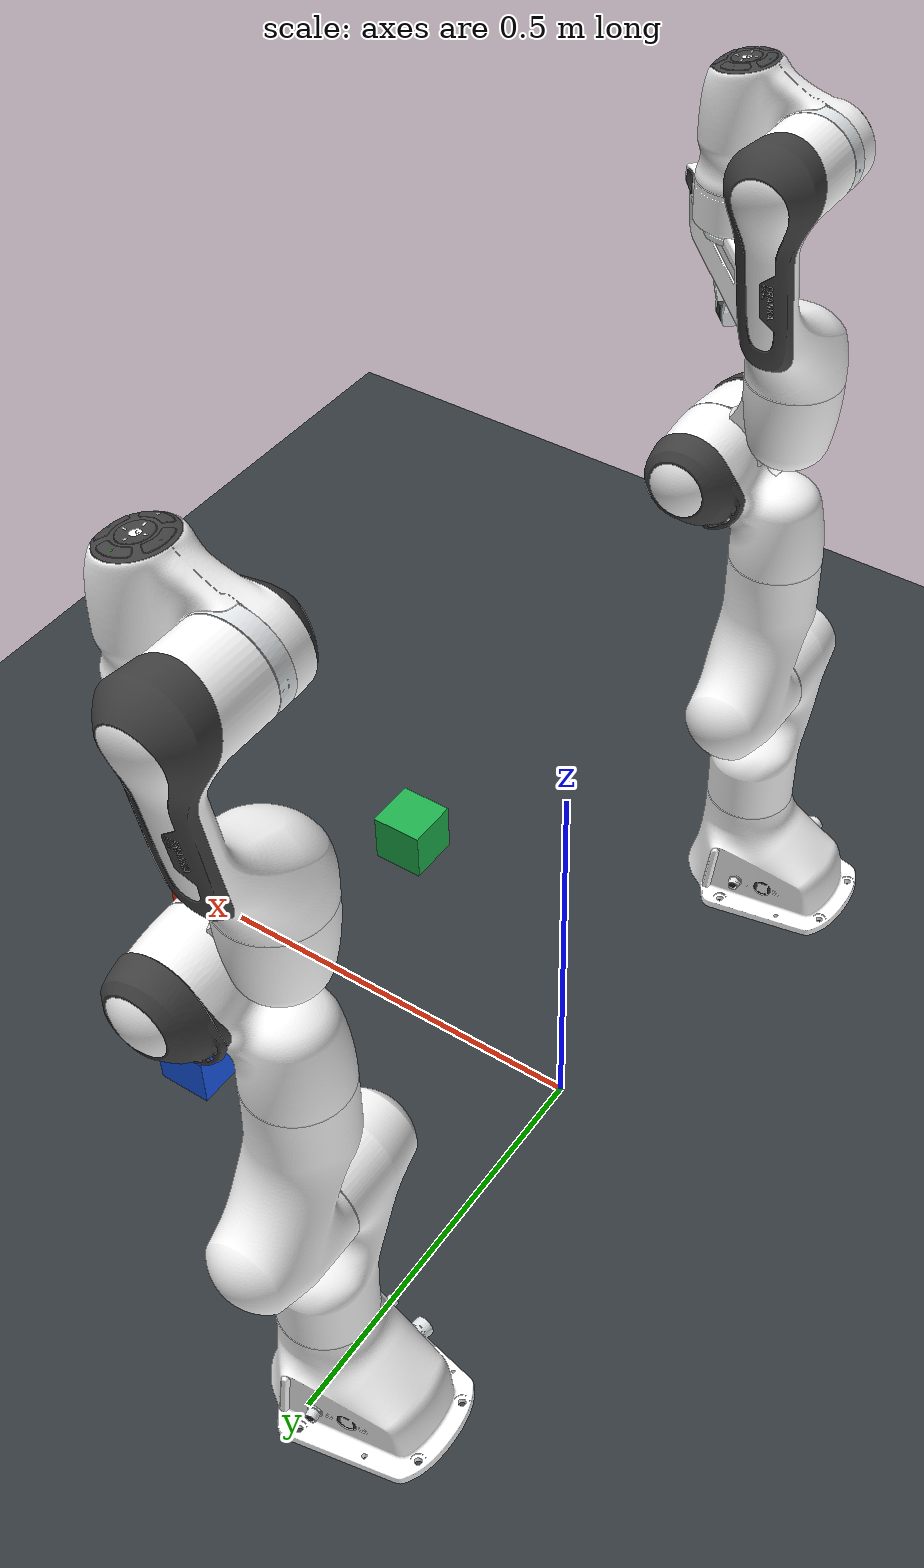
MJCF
<mujoco model="dual panda cube scene">
  <compiler angle="radian" meshdir="../franka_emika_panda" autolimits="true" />
  <option cone="elliptic" impratio="20" iterations="100" tolerance="1e-10" />
  <default>
    <default class="panda">
      <material specular="0.5" shininess="0.25" />
      <joint armature="0.1" damping="1" axis="0 0 1" range="-2.8973 2.8973" />
      <general dyntype="none" biastype="affine" ctrlrange="-2.8973 2.8973" forcerange="-87 87" />
      <default class="finger">
        <joint axis="0 1 0" type="slide" range="0 0.04" />
      </default>
      <default class="visual">
        <geom type="mesh" contype="0" conaffinity="0" group="2" />
      </default>
      <default class="collision">
        <geom type="mesh" group="3" />
        <default class="fingertip_pad_collision_1">
          <geom type="box" size="0.0085 0.004 0.0085" pos="0 0.0055 0.0445" />
        </default>
        <default class="fingertip_pad_collision_2">
          <geom type="box" size="0.003 0.002 0.003" pos="0.0055 0.002 0.05" />
        </default>
        <default class="fingertip_pad_collision_3">
          <geom type="box" size="0.003 0.002 0.003" pos="-0.0055 0.002 0.05" />
        </default>
        <default class="fingertip_pad_collision_4">
          <geom type="box" size="0.003 0.002 0.0035" pos="0.0055 0.002 0.0395" />
        </default>
        <default class="fingertip_pad_collision_5">
          <geom type="box" size="0.003 0.002 0.0035" pos="-0.0055 0.002 0.0395" />
        </default>
      </default>
    </default>
  </default>
  <asset>
    <material class="panda" name="white" rgba="1 1 1 1" />
    <material class="panda" name="off_white" rgba="0.901961 0.921569 0.929412 1" />
    <material class="panda" name="black" rgba="0.25 0.25 0.25 1" />
    <material class="panda" name="green" rgba="0 1 0 1" />
    <material class="panda" name="light_blue" rgba="0.039216 0.541176 0.780392 1" />
    <mesh name="link0_c" file="assets/link0.stl" />
    <mesh name="link1_c" file="assets/link1.stl" />
    <mesh name="link2_c" file="assets/link2.stl" />
    <mesh name="link3_c" file="assets/link3.stl" />
    <mesh name="link4_c" file="assets/link4.stl" />
    <mesh name="link5_c0" file="assets/link5_collision_0.obj" />
    <mesh name="link5_c1" file="assets/link5_collision_1.obj" />
    <mesh name="link5_c2" file="assets/link5_collision_2.obj" />
    <mesh name="link6_c" file="assets/link6.stl" />
    <mesh name="link7_c" file="assets/link7.stl" />
    <mesh name="hand_c" file="assets/hand.stl" />
    <mesh file="assets/link0_0.obj" />
    <mesh file="assets/link0_1.obj" />
    <mesh file="assets/link0_2.obj" />
    <mesh file="assets/link0_3.obj" />
    <mesh file="assets/link0_4.obj" />
    <mesh file="assets/link0_5.obj" />
    <mesh file="assets/link0_7.obj" />
    <mesh file="assets/link0_8.obj" />
    <mesh file="assets/link0_9.obj" />
    <mesh file="assets/link0_10.obj" />
    <mesh file="assets/link0_11.obj" />
    <mesh file="assets/link1.obj" />
    <mesh file="assets/link2.obj" />
    <mesh file="assets/link3_0.obj" />
    <mesh file="assets/link3_1.obj" />
    <mesh file="assets/link3_2.obj" />
    <mesh file="assets/link3_3.obj" />
    <mesh file="assets/link4_0.obj" />
    <mesh file="assets/link4_1.obj" />
    <mesh file="assets/link4_2.obj" />
    <mesh file="assets/link4_3.obj" />
    <mesh file="assets/link5_0.obj" />
    <mesh file="assets/link5_1.obj" />
    <mesh file="assets/link5_2.obj" />
    <mesh file="assets/link6_0.obj" />
    <mesh file="assets/link6_1.obj" />
    <mesh file="assets/link6_2.obj" />
    <mesh file="assets/link6_3.obj" />
    <mesh file="assets/link6_4.obj" />
    <mesh file="assets/link6_5.obj" />
    <mesh file="assets/link6_6.obj" />
    <mesh file="assets/link6_7.obj" />
    <mesh file="assets/link6_8.obj" />
    <mesh file="assets/link6_9.obj" />
    <mesh file="assets/link6_10.obj" />
    <mesh file="assets/link6_11.obj" />
    <mesh file="assets/link6_12.obj" />
    <mesh file="assets/link6_13.obj" />
    <mesh file="assets/link6_14.obj" />
    <mesh file="assets/link6_15.obj" />
    <mesh file="assets/link6_16.obj" />
    <mesh file="assets/link7_0.obj" />
    <mesh file="assets/link7_1.obj" />
    <mesh file="assets/link7_2.obj" />
    <mesh file="assets/link7_3.obj" />
    <mesh file="assets/link7_4.obj" />
    <mesh file="assets/link7_5.obj" />
    <mesh file="assets/link7_6.obj" />
    <mesh file="assets/link7_7.obj" />
    <mesh file="assets/hand_0.obj" />
    <mesh file="assets/hand_1.obj" />
    <mesh file="assets/hand_2.obj" />
    <mesh file="assets/hand_3.obj" />
    <mesh file="assets/hand_4.obj" />
    <mesh file="assets/finger_0.obj" />
    <mesh file="assets/finger_1.obj" />
    <texture type="skybox" builtin="gradient" rgb1="0.35 0.45 0.55" rgb2="0.02 0.03 0.04" width="512" height="3072" />
    <texture type="2d" name="ground_grid" builtin="checker" mark="edge" rgb1="0.25 0.28 0.30" rgb2="0.16 0.18 0.20" markrgb="0.8 0.8 0.8" width="300" height="300" />
    <material name="ground_grid" texture="ground_grid" texuniform="true" texrepeat="5 5" reflectance="0.02" specular="0" shininess="0" />
    <material name="block_red" rgba="0.95 0.18 0.08 1" />
    <material name="block_blue" rgba="0.10 0.36 0.95 1" />
    <material name="block_green" rgba="0.12 0.70 0.30 1" />
    <material name="wood" rgba="0.58 0.36 0.18 1" />
    <material name="pillar_mat" rgba="0.70 0.72 0.70 1" />
  </asset>
  <statistic center="0.45 0 0.25" extent="1.6" />
  <visual>
    <headlight diffuse="0.6 0.6 0.6" ambient="0.3 0.3 0.3" specular="0 0 0" />
    <rgba haze="0.12 0.16 0.20 1" />
    <global azimuth="135" elevation="-25" />
  </visual>
  <worldbody>
    <light name="key" pos="0.2 -0.8 1.6" dir="-0.2 0.7 -1" directional="true" />
    <light name="fill" pos="-0.6 0.4 1.2" dir="0.5 -0.2 -1" directional="true" diffuse="0.25 0.25 0.25" />
    <geom name="floor" type="plane" size="2 2 0.05" material="ground_grid" friction="2.0 0.5 0.02" />
    <body name="block_red" pos="0.55 0 0.04">
      <freejoint name="block_red_freejoint" />
      <geom name="block_red_geom" type="box" size="0.035 0.035 0.035" mass="0.08" material="block_red" friction="5.0 2.0 0.1" condim="6" solref="0.002 1" solimp="0.95 0.99 0.001" />
    </body>
    <body name="block_blue" pos="0.38 0.22 0.04">
      <freejoint name="block_blue_freejoint" />
      <geom name="block_blue_geom" type="box" size="0.035 0.035 0.035" mass="0.08" material="block_blue" friction="5.0 2.0 0.1" condim="6" solref="0.002 1" solimp="0.95 0.99 0.001" />
    </body>
    <body name="block_green" pos="0.38 -0.22 0.04">
      <freejoint name="block_green_freejoint" />
      <geom name="block_green_geom" type="box" size="0.035 0.035 0.035" mass="0.08" material="block_green" friction="5.0 2.0 0.1" condim="6" solref="0.002 1" solimp="0.95 0.99 0.001" />
    </body>
    <camera name="overview" pos="1.25 -1.20 0.85" xyaxes="0.674 0.739 0 -0.36 0.33 0.87" />
    <body name="left_link0" childclass="panda" pos="0 0.45 0">
      <inertial mass="0.629769" pos="-0.041018 -0.00014 0.049974" fullinertia="0.00315 0.00388 0.004285 8.2904e-7 0.00015 8.2299e-6" />
      <geom mesh="link0_0" material="off_white" class="visual" />
      <geom mesh="link0_1" material="black" class="visual" />
      <geom mesh="link0_2" material="off_white" class="visual" />
      <geom mesh="link0_3" material="black" class="visual" />
      <geom mesh="link0_4" material="off_white" class="visual" />
      <geom mesh="link0_5" material="black" class="visual" />
      <geom mesh="link0_7" material="white" class="visual" />
      <geom mesh="link0_8" material="white" class="visual" />
      <geom mesh="link0_9" material="black" class="visual" />
      <geom mesh="link0_10" material="off_white" class="visual" />
      <geom mesh="link0_11" material="white" class="visual" />
      <geom mesh="link0_c" class="collision" />
      <body name="left_link1" pos="0 0 0.333">
        <inertial mass="4.970684" pos="0.003875 0.002081 -0.04762" fullinertia="0.70337 0.70661 0.0091170 -0.00013900 0.0067720 0.019169" />
        <joint name="left_joint1" />
        <geom material="white" mesh="link1" class="visual" />
        <geom mesh="link1_c" class="collision" />
        <body name="left_link2" quat="1 -1 0 0">
          <inertial mass="0.646926" pos="-0.003141 -0.02872 0.003495" fullinertia="0.0079620 2.8110e-2 2.5995e-2 -3.925e-3 1.0254e-2 7.04e-4" />
          <joint name="left_joint2" range="-1.7628 1.7628" />
          <geom material="white" mesh="link2" class="visual" />
          <geom mesh="link2_c" class="collision" />
          <body name="left_link3" pos="0 -0.316 0" quat="1 1 0 0">
            <joint name="left_joint3" />
            <inertial mass="3.228604" pos="2.7518e-2 3.9252e-2 -6.6502e-2" fullinertia="3.7242e-2 3.6155e-2 1.083e-2 -4.761e-3 -1.1396e-2 -1.2805e-2" />
            <geom mesh="link3_0" material="white" class="visual" />
            <geom mesh="link3_1" material="white" class="visual" />
            <geom mesh="link3_2" material="white" class="visual" />
            <geom mesh="link3_3" material="black" class="visual" />
            <geom mesh="link3_c" class="collision" />
            <body name="left_link4" pos="0.0825 0 0" quat="1 1 0 0">
              <inertial mass="3.587895" pos="-5.317e-2 1.04419e-1 2.7454e-2" fullinertia="2.5853e-2 1.9552e-2 2.8323e-2 7.796e-3 -1.332e-3 8.641e-3" />
              <joint name="left_joint4" range="-3.0718 -0.0698" />
              <geom mesh="link4_0" material="white" class="visual" />
              <geom mesh="link4_1" material="white" class="visual" />
              <geom mesh="link4_2" material="black" class="visual" />
              <geom mesh="link4_3" material="white" class="visual" />
              <geom mesh="link4_c" class="collision" />
              <body name="left_link5" pos="-0.0825 0.384 0" quat="1 -1 0 0">
                <inertial mass="1.225946" pos="-1.1953e-2 4.1065e-2 -3.8437e-2" fullinertia="3.5549e-2 2.9474e-2 8.627e-3 -2.117e-3 -4.037e-3 2.29e-4" />
                <joint name="left_joint5" />
                <geom mesh="link5_0" material="black" class="visual" />
                <geom mesh="link5_1" material="white" class="visual" />
                <geom mesh="link5_2" material="white" class="visual" />
                <geom mesh="link5_c0" class="collision" />
                <geom mesh="link5_c1" class="collision" />
                <geom mesh="link5_c2" class="collision" />
                <body name="left_link6" quat="1 1 0 0">
                  <inertial mass="1.666555" pos="6.0149e-2 -1.4117e-2 -1.0517e-2" fullinertia="1.964e-3 4.354e-3 5.433e-3 1.09e-4 -1.158e-3 3.41e-4" />
                  <joint name="left_joint6" range="-0.0175 3.7525" />
                  <geom mesh="link6_0" material="off_white" class="visual" />
                  <geom mesh="link6_1" material="white" class="visual" />
                  <geom mesh="link6_2" material="black" class="visual" />
                  <geom mesh="link6_3" material="white" class="visual" />
                  <geom mesh="link6_4" material="white" class="visual" />
                  <geom mesh="link6_5" material="white" class="visual" />
                  <geom mesh="link6_6" material="white" class="visual" />
                  <geom mesh="link6_7" material="light_blue" class="visual" />
                  <geom mesh="link6_8" material="light_blue" class="visual" />
                  <geom mesh="link6_9" material="black" class="visual" />
                  <geom mesh="link6_10" material="black" class="visual" />
                  <geom mesh="link6_11" material="white" class="visual" />
                  <geom mesh="link6_12" material="green" class="visual" />
                  <geom mesh="link6_13" material="white" class="visual" />
                  <geom mesh="link6_14" material="black" class="visual" />
                  <geom mesh="link6_15" material="black" class="visual" />
                  <geom mesh="link6_16" material="white" class="visual" />
                  <geom mesh="link6_c" class="collision" />
                  <body name="left_link7" pos="0.088 0 0" quat="1 1 0 0">
                    <inertial mass="7.35522e-01" pos="1.0517e-2 -4.252e-3 6.1597e-2" fullinertia="1.2516e-2 1.0027e-2 4.815e-3 -4.28e-4 -1.196e-3 -7.41e-4" />
                    <joint name="left_joint7" />
                    <geom mesh="link7_0" material="white" class="visual" />
                    <geom mesh="link7_1" material="black" class="visual" />
                    <geom mesh="link7_2" material="black" class="visual" />
                    <geom mesh="link7_3" material="black" class="visual" />
                    <geom mesh="link7_4" material="black" class="visual" />
                    <geom mesh="link7_5" material="black" class="visual" />
                    <geom mesh="link7_6" material="black" class="visual" />
                    <geom mesh="link7_7" material="white" class="visual" />
                    <geom mesh="link7_c" class="collision" />
                    <body name="left_hand" pos="0 0 0.107" quat="0.9238795 0 0 -0.3826834">
                      <inertial mass="0.73" pos="-0.01 0 0.03" diaginertia="0.001 0.0025 0.0017" />
                      <geom mesh="hand_0" material="off_white" class="visual" />
                      <geom mesh="hand_1" material="black" class="visual" />
                      <geom mesh="hand_2" material="black" class="visual" />
                      <geom mesh="hand_3" material="white" class="visual" />
                      <geom mesh="hand_4" material="off_white" class="visual" />
                      <geom mesh="hand_c" class="collision" />
                      <body name="left_left_finger" pos="0 0 0.0584">
                        <inertial mass="0.015" pos="0 0 0" diaginertia="2.375e-6 2.375e-6 7.5e-7" />
                        <joint name="left_finger_joint1" class="finger" />
                        <geom mesh="finger_0" material="off_white" class="visual" />
                        <geom mesh="finger_1" material="black" class="visual" />
                        <geom mesh="finger_0" class="collision" />
                        <geom class="fingertip_pad_collision_1" />
                        <geom class="fingertip_pad_collision_2" />
                        <geom class="fingertip_pad_collision_3" />
                        <geom class="fingertip_pad_collision_4" />
                        <geom class="fingertip_pad_collision_5" />
                      </body>
                      <body name="left_right_finger" pos="0 0 0.0584" quat="0 0 0 1">
                        <inertial mass="0.015" pos="0 0 0" diaginertia="2.375e-6 2.375e-6 7.5e-7" />
                        <joint name="left_finger_joint2" class="finger" />
                        <geom mesh="finger_0" material="off_white" class="visual" />
                        <geom mesh="finger_1" material="black" class="visual" />
                        <geom mesh="finger_0" class="collision" />
                        <geom class="fingertip_pad_collision_1" />
                        <geom class="fingertip_pad_collision_2" />
                        <geom class="fingertip_pad_collision_3" />
                        <geom class="fingertip_pad_collision_4" />
                        <geom class="fingertip_pad_collision_5" />
                      </body>
                    </body>
                  </body>
                </body>
              </body>
            </body>
          </body>
        </body>
      </body>
    </body>
    <body name="right_link0" childclass="panda" pos="0 -0.45 0">
      <inertial mass="0.629769" pos="-0.041018 -0.00014 0.049974" fullinertia="0.00315 0.00388 0.004285 8.2904e-7 0.00015 8.2299e-6" />
      <geom mesh="link0_0" material="off_white" class="visual" />
      <geom mesh="link0_1" material="black" class="visual" />
      <geom mesh="link0_2" material="off_white" class="visual" />
      <geom mesh="link0_3" material="black" class="visual" />
      <geom mesh="link0_4" material="off_white" class="visual" />
      <geom mesh="link0_5" material="black" class="visual" />
      <geom mesh="link0_7" material="white" class="visual" />
      <geom mesh="link0_8" material="white" class="visual" />
      <geom mesh="link0_9" material="black" class="visual" />
      <geom mesh="link0_10" material="off_white" class="visual" />
      <geom mesh="link0_11" material="white" class="visual" />
      <geom mesh="link0_c" class="collision" />
      <body name="right_link1" pos="0 0 0.333">
        <inertial mass="4.970684" pos="0.003875 0.002081 -0.04762" fullinertia="0.70337 0.70661 0.0091170 -0.00013900 0.0067720 0.019169" />
        <joint name="right_joint1" />
        <geom material="white" mesh="link1" class="visual" />
        <geom mesh="link1_c" class="collision" />
        <body name="right_link2" quat="1 -1 0 0">
          <inertial mass="0.646926" pos="-0.003141 -0.02872 0.003495" fullinertia="0.0079620 2.8110e-2 2.5995e-2 -3.925e-3 1.0254e-2 7.04e-4" />
          <joint name="right_joint2" range="-1.7628 1.7628" />
          <geom material="white" mesh="link2" class="visual" />
          <geom mesh="link2_c" class="collision" />
          <body name="right_link3" pos="0 -0.316 0" quat="1 1 0 0">
            <joint name="right_joint3" />
            <inertial mass="3.228604" pos="2.7518e-2 3.9252e-2 -6.6502e-2" fullinertia="3.7242e-2 3.6155e-2 1.083e-2 -4.761e-3 -1.1396e-2 -1.2805e-2" />
            <geom mesh="link3_0" material="white" class="visual" />
            <geom mesh="link3_1" material="white" class="visual" />
            <geom mesh="link3_2" material="white" class="visual" />
            <geom mesh="link3_3" material="black" class="visual" />
            <geom mesh="link3_c" class="collision" />
            <body name="right_link4" pos="0.0825 0 0" quat="1 1 0 0">
              <inertial mass="3.587895" pos="-5.317e-2 1.04419e-1 2.7454e-2" fullinertia="2.5853e-2 1.9552e-2 2.8323e-2 7.796e-3 -1.332e-3 8.641e-3" />
              <joint name="right_joint4" range="-3.0718 -0.0698" />
              <geom mesh="link4_0" material="white" class="visual" />
              <geom mesh="link4_1" material="white" class="visual" />
              <geom mesh="link4_2" material="black" class="visual" />
              <geom mesh="link4_3" material="white" class="visual" />
              <geom mesh="link4_c" class="collision" />
              <body name="right_link5" pos="-0.0825 0.384 0" quat="1 -1 0 0">
                <inertial mass="1.225946" pos="-1.1953e-2 4.1065e-2 -3.8437e-2" fullinertia="3.5549e-2 2.9474e-2 8.627e-3 -2.117e-3 -4.037e-3 2.29e-4" />
                <joint name="right_joint5" />
                <geom mesh="link5_0" material="black" class="visual" />
                <geom mesh="link5_1" material="white" class="visual" />
                <geom mesh="link5_2" material="white" class="visual" />
                <geom mesh="link5_c0" class="collision" />
                <geom mesh="link5_c1" class="collision" />
                <geom mesh="link5_c2" class="collision" />
                <body name="right_link6" quat="1 1 0 0">
                  <inertial mass="1.666555" pos="6.0149e-2 -1.4117e-2 -1.0517e-2" fullinertia="1.964e-3 4.354e-3 5.433e-3 1.09e-4 -1.158e-3 3.41e-4" />
                  <joint name="right_joint6" range="-0.0175 3.7525" />
                  <geom mesh="link6_0" material="off_white" class="visual" />
                  <geom mesh="link6_1" material="white" class="visual" />
                  <geom mesh="link6_2" material="black" class="visual" />
                  <geom mesh="link6_3" material="white" class="visual" />
                  <geom mesh="link6_4" material="white" class="visual" />
                  <geom mesh="link6_5" material="white" class="visual" />
                  <geom mesh="link6_6" material="white" class="visual" />
                  <geom mesh="link6_7" material="light_blue" class="visual" />
                  <geom mesh="link6_8" material="light_blue" class="visual" />
                  <geom mesh="link6_9" material="black" class="visual" />
                  <geom mesh="link6_10" material="black" class="visual" />
                  <geom mesh="link6_11" material="white" class="visual" />
                  <geom mesh="link6_12" material="green" class="visual" />
                  <geom mesh="link6_13" material="white" class="visual" />
                  <geom mesh="link6_14" material="black" class="visual" />
                  <geom mesh="link6_15" material="black" class="visual" />
                  <geom mesh="link6_16" material="white" class="visual" />
                  <geom mesh="link6_c" class="collision" />
                  <body name="right_link7" pos="0.088 0 0" quat="1 1 0 0">
                    <inertial mass="7.35522e-01" pos="1.0517e-2 -4.252e-3 6.1597e-2" fullinertia="1.2516e-2 1.0027e-2 4.815e-3 -4.28e-4 -1.196e-3 -7.41e-4" />
                    <joint name="right_joint7" />
                    <geom mesh="link7_0" material="white" class="visual" />
                    <geom mesh="link7_1" material="black" class="visual" />
                    <geom mesh="link7_2" material="black" class="visual" />
                    <geom mesh="link7_3" material="black" class="visual" />
                    <geom mesh="link7_4" material="black" class="visual" />
                    <geom mesh="link7_5" material="black" class="visual" />
                    <geom mesh="link7_6" material="black" class="visual" />
                    <geom mesh="link7_7" material="white" class="visual" />
                    <geom mesh="link7_c" class="collision" />
                    <body name="right_hand" pos="0 0 0.107" quat="0.9238795 0 0 -0.3826834">
                      <inertial mass="0.73" pos="-0.01 0 0.03" diaginertia="0.001 0.0025 0.0017" />
                      <geom mesh="hand_0" material="off_white" class="visual" />
                      <geom mesh="hand_1" material="black" class="visual" />
                      <geom mesh="hand_2" material="black" class="visual" />
                      <geom mesh="hand_3" material="white" class="visual" />
                      <geom mesh="hand_4" material="off_white" class="visual" />
                      <geom mesh="hand_c" class="collision" />
                      <body name="right_left_finger" pos="0 0 0.0584">
                        <inertial mass="0.015" pos="0 0 0" diaginertia="2.375e-6 2.375e-6 7.5e-7" />
                        <joint name="right_finger_joint1" class="finger" />
                        <geom mesh="finger_0" material="off_white" class="visual" />
                        <geom mesh="finger_1" material="black" class="visual" />
                        <geom mesh="finger_0" class="collision" />
                        <geom class="fingertip_pad_collision_1" />
                        <geom class="fingertip_pad_collision_2" />
                        <geom class="fingertip_pad_collision_3" />
                        <geom class="fingertip_pad_collision_4" />
                        <geom class="fingertip_pad_collision_5" />
                      </body>
                      <body name="right_right_finger" pos="0 0 0.0584" quat="0 0 0 1">
                        <inertial mass="0.015" pos="0 0 0" diaginertia="2.375e-6 2.375e-6 7.5e-7" />
                        <joint name="right_finger_joint2" class="finger" />
                        <geom mesh="finger_0" material="off_white" class="visual" />
                        <geom mesh="finger_1" material="black" class="visual" />
                        <geom mesh="finger_0" class="collision" />
                        <geom class="fingertip_pad_collision_1" />
                        <geom class="fingertip_pad_collision_2" />
                        <geom class="fingertip_pad_collision_3" />
                        <geom class="fingertip_pad_collision_4" />
                        <geom class="fingertip_pad_collision_5" />
                      </body>
                    </body>
                  </body>
                </body>
              </body>
            </body>
          </body>
        </body>
      </body>
    </body>
  </worldbody>
  <tendon>
    <fixed name="left_split">
      <joint joint="left_finger_joint1" coef="0.5" />
      <joint joint="left_finger_joint2" coef="0.5" />
    </fixed>
    <fixed name="right_split">
      <joint joint="right_finger_joint1" coef="0.5" />
      <joint joint="right_finger_joint2" coef="0.5" />
    </fixed>
  </tendon>
  <equality>
    <joint joint1="left_finger_joint1" joint2="left_finger_joint2" solimp="0.95 0.99 0.001" solref="0.005 1" />
    <joint joint1="right_finger_joint1" joint2="right_finger_joint2" solimp="0.95 0.99 0.001" solref="0.005 1" />
  </equality>
  <actuator>
    <general class="panda" name="left_actuator1" joint="left_joint1" gainprm="4500" biasprm="0 -4500 -450" />
    <general class="panda" name="left_actuator2" joint="left_joint2" gainprm="4500" biasprm="0 -4500 -450" ctrlrange="-1.7628 1.7628" />
    <general class="panda" name="left_actuator3" joint="left_joint3" gainprm="3500" biasprm="0 -3500 -350" />
    <general class="panda" name="left_actuator4" joint="left_joint4" gainprm="3500" biasprm="0 -3500 -350" ctrlrange="-3.0718 -0.0698" />
    <general class="panda" name="left_actuator5" joint="left_joint5" gainprm="2000" biasprm="0 -2000 -200" forcerange="-12 12" />
    <general class="panda" name="left_actuator6" joint="left_joint6" gainprm="2000" biasprm="0 -2000 -200" forcerange="-12 12" ctrlrange="-0.0175 3.7525" />
    <general class="panda" name="left_actuator7" joint="left_joint7" gainprm="2000" biasprm="0 -2000 -200" forcerange="-12 12" />
    <general class="panda" name="left_actuator8" tendon="left_split" forcerange="-100 100" ctrlrange="0 255" gainprm="0.01568627451 0 0" biasprm="0 -100 -10" />
    <general class="panda" name="right_actuator1" joint="right_joint1" gainprm="4500" biasprm="0 -4500 -450" />
    <general class="panda" name="right_actuator2" joint="right_joint2" gainprm="4500" biasprm="0 -4500 -450" ctrlrange="-1.7628 1.7628" />
    <general class="panda" name="right_actuator3" joint="right_joint3" gainprm="3500" biasprm="0 -3500 -350" />
    <general class="panda" name="right_actuator4" joint="right_joint4" gainprm="3500" biasprm="0 -3500 -350" ctrlrange="-3.0718 -0.0698" />
    <general class="panda" name="right_actuator5" joint="right_joint5" gainprm="2000" biasprm="0 -2000 -200" forcerange="-12 12" />
    <general class="panda" name="right_actuator6" joint="right_joint6" gainprm="2000" biasprm="0 -2000 -200" forcerange="-12 12" ctrlrange="-0.0175 3.7525" />
    <general class="panda" name="right_actuator7" joint="right_joint7" gainprm="2000" biasprm="0 -2000 -200" forcerange="-12 12" />
    <general class="panda" name="right_actuator8" tendon="right_split" forcerange="-100 100" ctrlrange="0 255" gainprm="0.01568627451 0 0" biasprm="0 -100 -10" />
  </actuator>
  <contact>
    <exclude body1="left_link0" body2="left_link1" />
    <exclude body1="right_link0" body2="right_link1" />
  </contact>
</mujoco>
